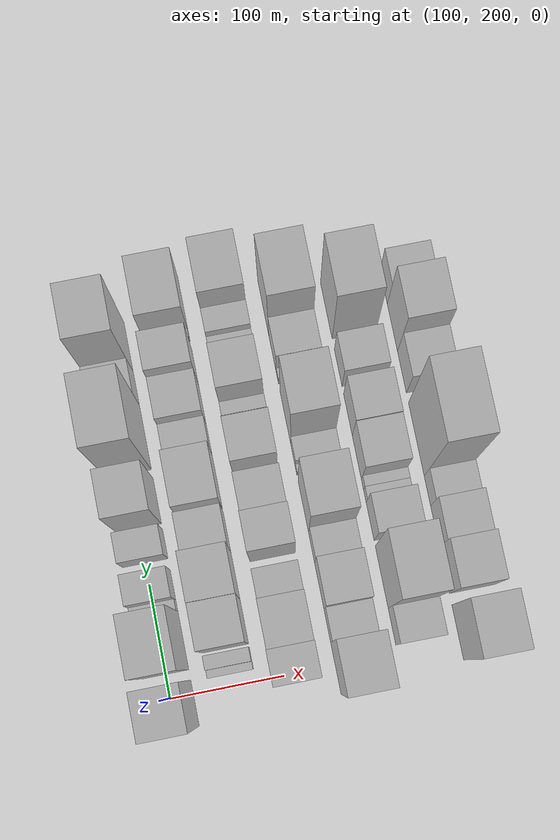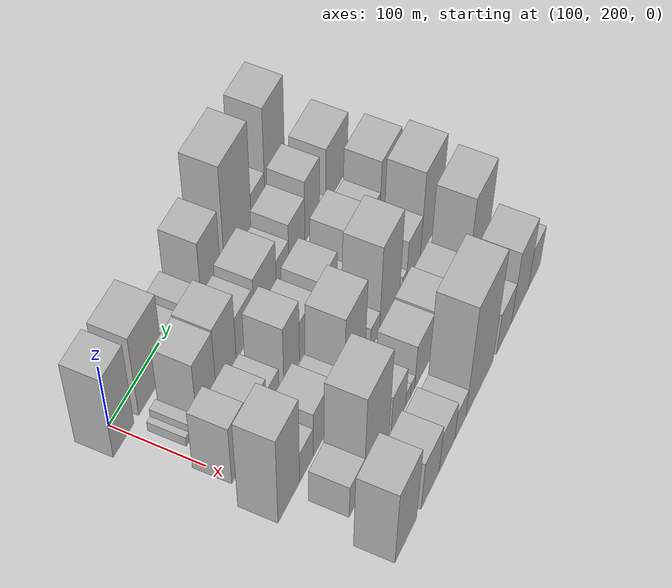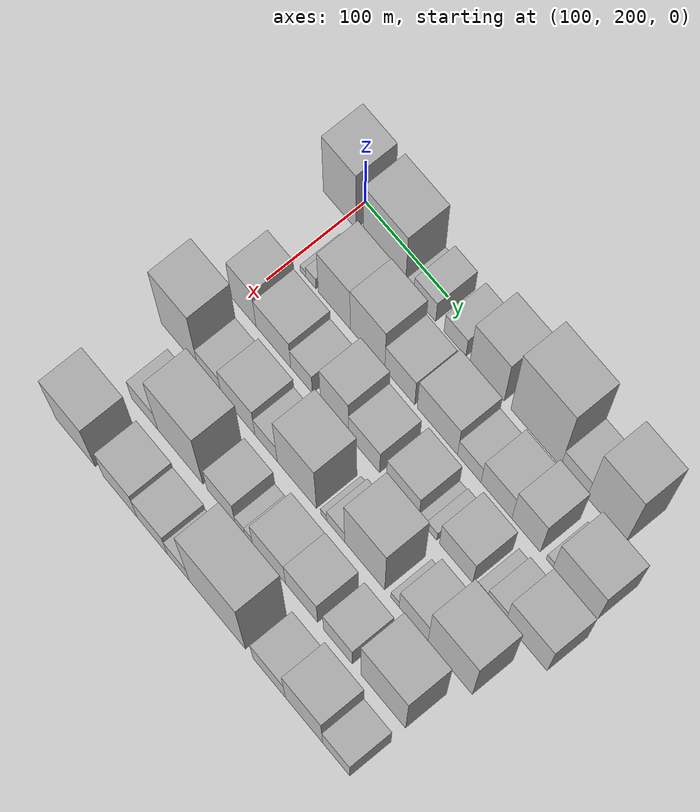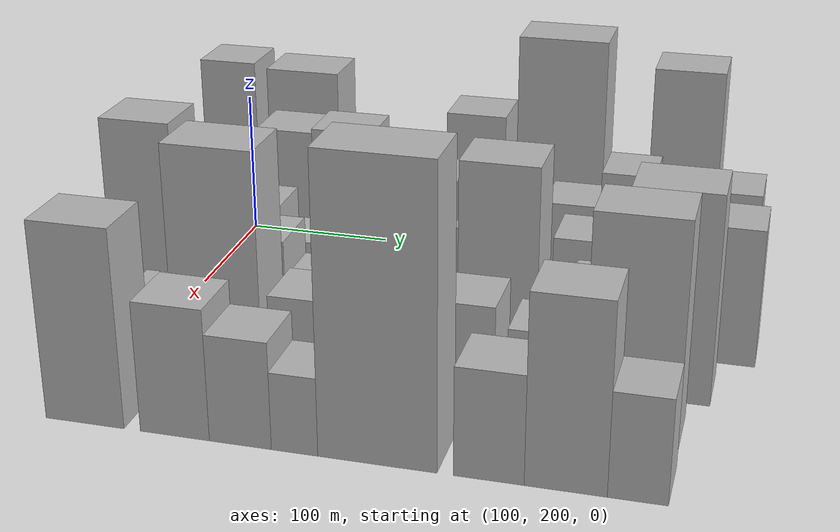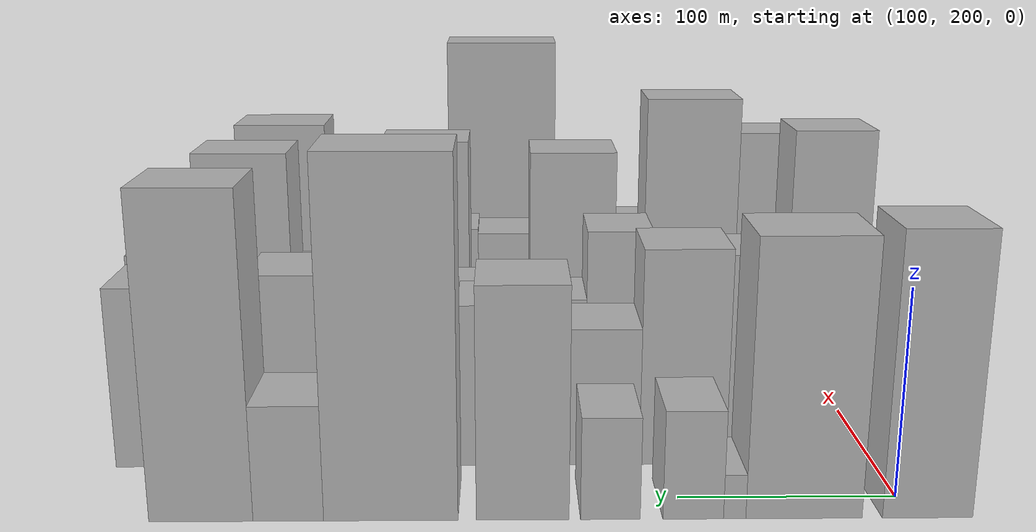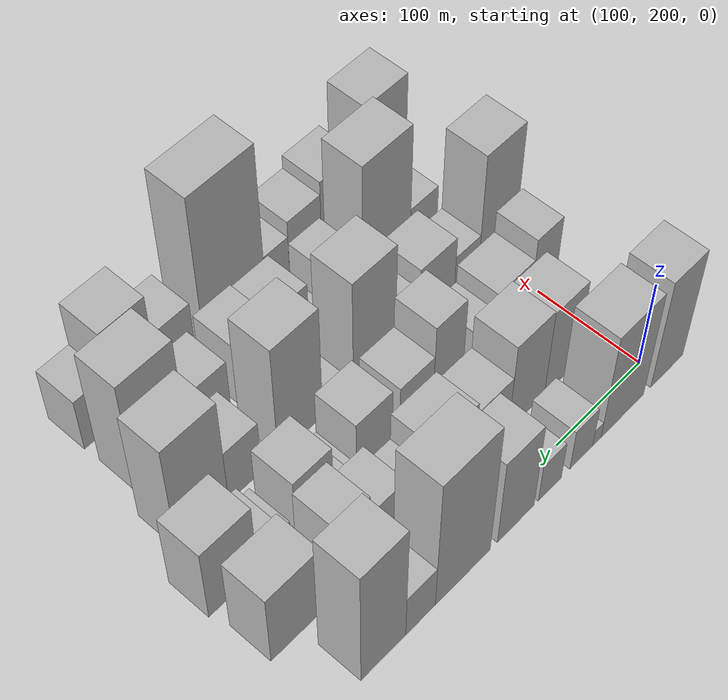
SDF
<sdf version="1.6">
 <world name="default">
  <model name="building_29">
   <static>1</static>
   <pose>100.0000 192.0008 0 0.000000 0.000000 0.000000</pose>
   <link name="link">
    <pose>0 0 66.00 0 0 0</pose>
    <collision name="collision"><geometry><box><size>40.0000 40.0782 132.0000</size></box></geometry></collision>
    <visual name="visual">
     <cast_shadows>0</cast_shadows>
     <geometry><box><size>40.0000 40.0782 132.0000</size></box></geometry>
     <material>
      <script>
       <uri>model://HANNAS_wall/materials/scripts</uri>
       <uri>model://HANNAS_wall/materials/textures</uri>
       <name>vrc/HANNAS_wall</name>
      </script>
     </material>
    </visual>
   </link>
  </model>
  <model name="building_30">
   <static>1</static>
   <pose>100.0000 246.7922 0 0.000000 0.000000 0.000000</pose>
   <link name="link">
    <pose>0 0 64.50 0 0 0</pose>
    <collision name="collision"><geometry><box><size>40.0000 51.5045 129.0000</size></box></geometry></collision>
    <visual name="visual">
     <cast_shadows>0</cast_shadows>
     <geometry><box><size>40.0000 51.5045 129.0000</size></box></geometry>
     <material>
      <script>
       <uri>model://HANNAS_wall/materials/scripts</uri>
       <uri>model://HANNAS_wall/materials/textures</uri>
       <name>vrc/HANNAS_wall</name>
      </script>
     </material>
    </visual>
   </link>
  </model>
  <model name="building_31">
   <static>1</static>
   <pose>100.0000 277.4822 0 0.000000 0.000000 0.000000</pose>
   <link name="link">
    <pose>0 0 10.50 0 0 0</pose>
    <collision name="collision"><geometry><box><size>40.0000 9.8754 21.0000</size></box></geometry></collision>
    <visual name="visual">
     <cast_shadows>0</cast_shadows>
     <geometry><box><size>40.0000 9.8754 21.0000</size></box></geometry>
     <material>
      <script>
       <uri>model://HANNAS_wall/materials/scripts</uri>
       <uri>model://HANNAS_wall/materials/textures</uri>
       <name>vrc/HANNAS_wall</name>
      </script>
     </material>
    </visual>
   </link>
  </model>
  <model name="building_32">
   <static>1</static>
   <pose>100.0000 295.7959 0 0.000000 0.000000 0.000000</pose>
   <link name="link">
    <pose>0 0 25.50 0 0 0</pose>
    <collision name="collision"><geometry><box><size>40.0000 26.7520 51.0000</size></box></geometry></collision>
    <visual name="visual">
     <cast_shadows>0</cast_shadows>
     <geometry><box><size>40.0000 26.7520 51.0000</size></box></geometry>
     <material>
      <script>
       <uri>model://HANNAS_wall/materials/scripts</uri>
       <uri>model://HANNAS_wall/materials/textures</uri>
       <name>vrc/HANNAS_wall</name>
      </script>
     </material>
    </visual>
   </link>
  </model>
  <model name="building_33">
   <static>1</static>
   <pose>100.0000 332.3460 0 0.000000 0.000000 0.000000</pose>
   <link name="link">
    <pose>0 0 24.00 0 0 0</pose>
    <collision name="collision"><geometry><box><size>40.0000 26.3484 48.0000</size></box></geometry></collision>
    <visual name="visual">
     <cast_shadows>0</cast_shadows>
     <geometry><box><size>40.0000 26.3484 48.0000</size></box></geometry>
     <material>
      <script>
       <uri>model://HANNAS_wall/materials/scripts</uri>
       <uri>model://HANNAS_wall/materials/textures</uri>
       <name>vrc/HANNAS_wall</name>
      </script>
     </material>
    </visual>
   </link>
  </model>
  <model name="building_34">
   <static>1</static>
   <pose>100.0000 370.9878 0 0.000000 0.000000 0.000000</pose>
   <link name="link">
    <pose>0 0 54.00 0 0 0</pose>
    <collision name="collision"><geometry><box><size>40.0000 40.9351 108.0000</size></box></geometry></collision>
    <visual name="visual">
     <cast_shadows>0</cast_shadows>
     <geometry><box><size>40.0000 40.9351 108.0000</size></box></geometry>
     <material>
      <script>
       <uri>model://HANNAS_wall/materials/scripts</uri>
       <uri>model://HANNAS_wall/materials/textures</uri>
       <name>vrc/HANNAS_wall</name>
      </script>
     </material>
    </visual>
   </link>
  </model>
  <model name="building_35">
   <static>1</static>
   <pose>100.0000 428.9990 0 0.000000 0.000000 0.000000</pose>
   <link name="link">
    <pose>0 0 82.50 0 0 0</pose>
    <collision name="collision"><geometry><box><size>40.0000 59.0874 165.0000</size></box></geometry></collision>
    <visual name="visual">
     <cast_shadows>0</cast_shadows>
     <geometry><box><size>40.0000 59.0874 165.0000</size></box></geometry>
     <material>
      <script>
       <uri>model://HANNAS_wall/materials/scripts</uri>
       <uri>model://HANNAS_wall/materials/textures</uri>
       <name>vrc/HANNAS_wall</name>
      </script>
     </material>
    </visual>
   </link>
  </model>
  <model name="building_36">
   <static>1</static>
   <pose>100.0000 474.0347 0 0.000000 0.000000 0.000000</pose>
   <link name="link">
    <pose>0 0 27.00 0 0 0</pose>
    <collision name="collision"><geometry><box><size>40.0000 30.9840 54.0000</size></box></geometry></collision>
    <visual name="visual">
     <cast_shadows>0</cast_shadows>
     <geometry><box><size>40.0000 30.9840 54.0000</size></box></geometry>
     <material>
      <script>
       <uri>model://HANNAS_wall/materials/scripts</uri>
       <uri>model://HANNAS_wall/materials/textures</uri>
       <name>vrc/HANNAS_wall</name>
      </script>
     </material>
    </visual>
   </link>
  </model>
  <model name="building_37">
   <static>1</static>
   <pose>100.0000 512.3588 0 0.000000 0.000000 0.000000</pose>
   <link name="link">
    <pose>0 0 75.00 0 0 0</pose>
    <collision name="collision"><geometry><box><size>40.0000 45.6642 150.0000</size></box></geometry></collision>
    <visual name="visual">
     <cast_shadows>0</cast_shadows>
     <geometry><box><size>40.0000 45.6642 150.0000</size></box></geometry>
     <material>
      <script>
       <uri>model://HANNAS_wall/materials/scripts</uri>
       <uri>model://HANNAS_wall/materials/textures</uri>
       <name>vrc/HANNAS_wall</name>
      </script>
     </material>
    </visual>
   </link>
  </model>
  <model name="building_79">
   <static>1</static>
   <pose>155.0000 213.9630 0 0.000000 0.000000 0.000000</pose>
   <link name="link">
    <pose>0 0 7.50 0 0 0</pose>
    <collision name="collision"><geometry><box><size>40.0000 6.9644 15.0000</size></box></geometry></collision>
    <visual name="visual">
     <cast_shadows>0</cast_shadows>
     <geometry><box><size>40.0000 6.9644 15.0000</size></box></geometry>
     <material>
      <script>
       <uri>model://HANNAS_wall/materials/scripts</uri>
       <uri>model://HANNAS_wall/materials/textures</uri>
       <name>vrc/HANNAS_wall</name>
      </script>
     </material>
    </visual>
   </link>
  </model>
  <model name="building_80">
   <static>1</static>
   <pose>155.0000 223.6297 0 0.000000 0.000000 0.000000</pose>
   <link name="link">
    <pose>0 0 13.50 0 0 0</pose>
    <collision name="collision"><geometry><box><size>40.0000 12.3691 27.0000</size></box></geometry></collision>
    <visual name="visual">
     <cast_shadows>0</cast_shadows>
     <geometry><box><size>40.0000 12.3691 27.0000</size></box></geometry>
     <material>
      <script>
       <uri>model://HANNAS_wall/materials/scripts</uri>
       <uri>model://HANNAS_wall/materials/textures</uri>
       <name>vrc/HANNAS_wall</name>
      </script>
     </material>
    </visual>
   </link>
  </model>
  <model name="building_81">
   <static>1</static>
   <pose>155.0000 252.2662 0 0.000000 0.000000 0.000000</pose>
   <link name="link">
    <pose>0 0 52.50 0 0 0</pose>
    <collision name="collision"><geometry><box><size>40.0000 38.9040 105.0000</size></box></geometry></collision>
    <visual name="visual">
     <cast_shadows>0</cast_shadows>
     <geometry><box><size>40.0000 38.9040 105.0000</size></box></geometry>
     <material>
      <script>
       <uri>model://HANNAS_wall/materials/scripts</uri>
       <uri>model://HANNAS_wall/materials/textures</uri>
       <name>vrc/HANNAS_wall</name>
      </script>
     </material>
    </visual>
   </link>
  </model>
  <model name="building_82">
   <static>1</static>
   <pose>155.0000 292.7242 0 0.000000 0.000000 0.000000</pose>
   <link name="link">
    <pose>0 0 54.00 0 0 0</pose>
    <collision name="collision"><geometry><box><size>40.0000 42.0119 108.0000</size></box></geometry></collision>
    <visual name="visual">
     <cast_shadows>0</cast_shadows>
     <geometry><box><size>40.0000 42.0119 108.0000</size></box></geometry>
     <material>
      <script>
       <uri>model://HANNAS_wall/materials/scripts</uri>
       <uri>model://HANNAS_wall/materials/textures</uri>
       <name>vrc/HANNAS_wall</name>
      </script>
     </material>
    </visual>
   </link>
  </model>
  <model name="building_83">
   <static>1</static>
   <pose>155.0000 331.7362 0 0.000000 0.000000 0.000000</pose>
   <link name="link">
    <pose>0 0 34.50 0 0 0</pose>
    <collision name="collision"><geometry><box><size>40.0000 36.0121 69.0000</size></box></geometry></collision>
    <visual name="visual">
     <cast_shadows>0</cast_shadows>
     <geometry><box><size>40.0000 36.0121 69.0000</size></box></geometry>
     <material>
      <script>
       <uri>model://HANNAS_wall/materials/scripts</uri>
       <uri>model://HANNAS_wall/materials/textures</uri>
       <name>vrc/HANNAS_wall</name>
      </script>
     </material>
    </visual>
   </link>
  </model>
  <model name="building_84">
   <static>1</static>
   <pose>155.0000 376.8849 0 0.000000 0.000000 0.000000</pose>
   <link name="link">
    <pose>0 0 40.50 0 0 0</pose>
    <collision name="collision"><geometry><box><size>40.0000 48.2853 81.0000</size></box></geometry></collision>
    <visual name="visual">
     <cast_shadows>0</cast_shadows>
     <geometry><box><size>40.0000 48.2853 81.0000</size></box></geometry>
     <material>
      <script>
       <uri>model://HANNAS_wall/materials/scripts</uri>
       <uri>model://HANNAS_wall/materials/textures</uri>
       <name>vrc/HANNAS_wall</name>
      </script>
     </material>
    </visual>
   </link>
  </model>
  <model name="building_85">
   <static>1</static>
   <pose>155.0000 415.0615 0 0.000000 0.000000 0.000000</pose>
   <link name="link">
    <pose>0 0 24.00 0 0 0</pose>
    <collision name="collision"><geometry><box><size>40.0000 28.0679 48.0000</size></box></geometry></collision>
    <visual name="visual">
     <cast_shadows>0</cast_shadows>
     <geometry><box><size>40.0000 28.0679 48.0000</size></box></geometry>
     <material>
      <script>
       <uri>model://HANNAS_wall/materials/scripts</uri>
       <uri>model://HANNAS_wall/materials/textures</uri>
       <name>vrc/HANNAS_wall</name>
      </script>
     </material>
    </visual>
   </link>
  </model>
  <model name="building_86">
   <static>1</static>
   <pose>155.0000 447.3086 0 0.000000 0.000000 0.000000</pose>
   <link name="link">
    <pose>0 0 36.00 0 0 0</pose>
    <collision name="collision"><geometry><box><size>40.0000 36.4263 72.0000</size></box></geometry></collision>
    <visual name="visual">
     <cast_shadows>0</cast_shadows>
     <geometry><box><size>40.0000 36.4263 72.0000</size></box></geometry>
     <material>
      <script>
       <uri>model://HANNAS_wall/materials/scripts</uri>
       <uri>model://HANNAS_wall/materials/textures</uri>
       <name>vrc/HANNAS_wall</name>
      </script>
     </material>
    </visual>
   </link>
  </model>
  <model name="building_87">
   <static>1</static>
   <pose>155.0000 482.3253 0 0.000000 0.000000 0.000000</pose>
   <link name="link">
    <pose>0 0 48.00 0 0 0</pose>
    <collision name="collision"><geometry><box><size>40.0000 33.6070 96.0000</size></box></geometry></collision>
    <visual name="visual">
     <cast_shadows>0</cast_shadows>
     <geometry><box><size>40.0000 33.6070 96.0000</size></box></geometry>
     <material>
      <script>
       <uri>model://HANNAS_wall/materials/scripts</uri>
       <uri>model://HANNAS_wall/materials/textures</uri>
       <name>vrc/HANNAS_wall</name>
      </script>
     </material>
    </visual>
   </link>
  </model>
  <model name="building_88">
   <static>1</static>
   <pose>155.0000 510.2449 0 0.000000 0.000000 0.000000</pose>
   <link name="link">
    <pose>0 0 9.00 0 0 0</pose>
    <collision name="collision"><geometry><box><size>40.0000 8.2322 18.0000</size></box></geometry></collision>
    <visual name="visual">
     <cast_shadows>0</cast_shadows>
     <geometry><box><size>40.0000 8.2322 18.0000</size></box></geometry>
     <material>
      <script>
       <uri>model://HANNAS_wall/materials/scripts</uri>
       <uri>model://HANNAS_wall/materials/textures</uri>
       <name>vrc/HANNAS_wall</name>
      </script>
     </material>
    </visual>
   </link>
  </model>
  <model name="building_89">
   <static>1</static>
   <pose>155.0000 540.3311 0 0.000000 0.000000 0.000000</pose>
   <link name="link">
    <pose>0 0 45.00 0 0 0</pose>
    <collision name="collision"><geometry><box><size>40.0000 51.9402 90.0000</size></box></geometry></collision>
    <visual name="visual">
     <cast_shadows>0</cast_shadows>
     <geometry><box><size>40.0000 51.9402 90.0000</size></box></geometry>
     <material>
      <script>
       <uri>model://HANNAS_wall/materials/scripts</uri>
       <uri>model://HANNAS_wall/materials/textures</uri>
       <name>vrc/HANNAS_wall</name>
      </script>
     </material>
    </visual>
   </link>
  </model>
  <model name="building_132">
   <static>1</static>
   <pose>210.0000 208.3521 0 0.000000 0.000000 0.000000</pose>
   <link name="link">
    <pose>0 0 48.00 0 0 0</pose>
    <collision name="collision"><geometry><box><size>40.0000 30.3574 96.0000</size></box></geometry></collision>
    <visual name="visual">
     <cast_shadows>0</cast_shadows>
     <geometry><box><size>40.0000 30.3574 96.0000</size></box></geometry>
     <material>
      <script>
       <uri>model://HANNAS_wall/materials/scripts</uri>
       <uri>model://HANNAS_wall/materials/textures</uri>
       <name>vrc/HANNAS_wall</name>
      </script>
     </material>
    </visual>
   </link>
  </model>
  <model name="building_133">
   <static>1</static>
   <pose>210.0000 244.8781 0 0.000000 0.000000 0.000000</pose>
   <link name="link">
    <pose>0 0 36.00 0 0 0</pose>
    <collision name="collision"><geometry><box><size>40.0000 42.6946 72.0000</size></box></geometry></collision>
    <visual name="visual">
     <cast_shadows>0</cast_shadows>
     <geometry><box><size>40.0000 42.6946 72.0000</size></box></geometry>
     <material>
      <script>
       <uri>model://HANNAS_wall/materials/scripts</uri>
       <uri>model://HANNAS_wall/materials/textures</uri>
       <name>vrc/HANNAS_wall</name>
      </script>
     </material>
    </visual>
   </link>
  </model>
  <model name="building_134">
   <static>1</static>
   <pose>210.0000 279.3875 0 0.000000 0.000000 0.000000</pose>
   <link name="link">
    <pose>0 0 25.50 0 0 0</pose>
    <collision name="collision"><geometry><box><size>40.0000 26.3243 51.0000</size></box></geometry></collision>
    <visual name="visual">
     <cast_shadows>0</cast_shadows>
     <geometry><box><size>40.0000 26.3243 51.0000</size></box></geometry>
     <material>
      <script>
       <uri>model://HANNAS_wall/materials/scripts</uri>
       <uri>model://HANNAS_wall/materials/textures</uri>
       <name>vrc/HANNAS_wall</name>
      </script>
     </material>
    </visual>
   </link>
  </model>
  <model name="building_135">
   <static>1</static>
   <pose>210.0000 319.4774 0 0.000000 0.000000 0.000000</pose>
   <link name="link">
    <pose>0 0 51.00 0 0 0</pose>
    <collision name="collision"><geometry><box><size>40.0000 33.8553 102.0000</size></box></geometry></collision>
    <visual name="visual">
     <cast_shadows>0</cast_shadows>
     <geometry><box><size>40.0000 33.8553 102.0000</size></box></geometry>
     <material>
      <script>
       <uri>model://HANNAS_wall/materials/scripts</uri>
       <uri>model://HANNAS_wall/materials/textures</uri>
       <name>vrc/HANNAS_wall</name>
      </script>
     </material>
    </visual>
   </link>
  </model>
  <model name="building_136">
   <static>1</static>
   <pose>210.0000 355.1259 0 0.000000 0.000000 0.000000</pose>
   <link name="link">
    <pose>0 0 33.00 0 0 0</pose>
    <collision name="collision"><geometry><box><size>40.0000 37.4417 66.0000</size></box></geometry></collision>
    <visual name="visual">
     <cast_shadows>0</cast_shadows>
     <geometry><box><size>40.0000 37.4417 66.0000</size></box></geometry>
     <material>
      <script>
       <uri>model://HANNAS_wall/materials/scripts</uri>
       <uri>model://HANNAS_wall/materials/textures</uri>
       <name>vrc/HANNAS_wall</name>
      </script>
     </material>
    </visual>
   </link>
  </model>
  <model name="building_137">
   <static>1</static>
   <pose>210.0000 401.2514 0 0.000000 0.000000 0.000000</pose>
   <link name="link">
    <pose>0 0 36.00 0 0 0</pose>
    <collision name="collision"><geometry><box><size>40.0000 38.8093 72.0000</size></box></geometry></collision>
    <visual name="visual">
     <cast_shadows>0</cast_shadows>
     <geometry><box><size>40.0000 38.8093 72.0000</size></box></geometry>
     <material>
      <script>
       <uri>model://HANNAS_wall/materials/scripts</uri>
       <uri>model://HANNAS_wall/materials/textures</uri>
       <name>vrc/HANNAS_wall</name>
      </script>
     </material>
    </visual>
   </link>
  </model>
  <model name="building_138">
   <static>1</static>
   <pose>210.0000 425.2472 0 0.000000 0.000000 0.000000</pose>
   <link name="link">
    <pose>0 0 10.50 0 0 0</pose>
    <collision name="collision"><geometry><box><size>40.0000 9.1824 21.0000</size></box></geometry></collision>
    <visual name="visual">
     <cast_shadows>0</cast_shadows>
     <geometry><box><size>40.0000 9.1824 21.0000</size></box></geometry>
     <material>
      <script>
       <uri>model://HANNAS_wall/materials/scripts</uri>
       <uri>model://HANNAS_wall/materials/textures</uri>
       <name>vrc/HANNAS_wall</name>
      </script>
     </material>
    </visual>
   </link>
  </model>
  <model name="building_139">
   <static>1</static>
   <pose>210.0000 435.9958 0 0.000000 0.000000 0.000000</pose>
   <link name="link">
    <pose>0 0 13.50 0 0 0</pose>
    <collision name="collision"><geometry><box><size>40.0000 12.3148 27.0000</size></box></geometry></collision>
    <visual name="visual">
     <cast_shadows>0</cast_shadows>
     <geometry><box><size>40.0000 12.3148 27.0000</size></box></geometry>
     <material>
      <script>
       <uri>model://HANNAS_wall/materials/scripts</uri>
       <uri>model://HANNAS_wall/materials/textures</uri>
       <name>vrc/HANNAS_wall</name>
      </script>
     </material>
    </visual>
   </link>
  </model>
  <model name="building_140">
   <static>1</static>
   <pose>210.0000 464.8243 0 0.000000 0.000000 0.000000</pose>
   <link name="link">
    <pose>0 0 36.00 0 0 0</pose>
    <collision name="collision"><geometry><box><size>40.0000 39.3422 72.0000</size></box></geometry></collision>
    <visual name="visual">
     <cast_shadows>0</cast_shadows>
     <geometry><box><size>40.0000 39.3422 72.0000</size></box></geometry>
     <material>
      <script>
       <uri>model://HANNAS_wall/materials/scripts</uri>
       <uri>model://HANNAS_wall/materials/textures</uri>
       <name>vrc/HANNAS_wall</name>
      </script>
     </material>
    </visual>
   </link>
  </model>
  <model name="building_141">
   <static>1</static>
   <pose>210.0000 495.4326 0 0.000000 0.000000 0.000000</pose>
   <link name="link">
    <pose>0 0 13.50 0 0 0</pose>
    <collision name="collision"><geometry><box><size>40.0000 11.8744 27.0000</size></box></geometry></collision>
    <visual name="visual">
     <cast_shadows>0</cast_shadows>
     <geometry><box><size>40.0000 11.8744 27.0000</size></box></geometry>
     <material>
      <script>
       <uri>model://HANNAS_wall/materials/scripts</uri>
       <uri>model://HANNAS_wall/materials/textures</uri>
       <name>vrc/HANNAS_wall</name>
      </script>
     </material>
    </visual>
   </link>
  </model>
  <model name="building_142">
   <static>1</static>
   <pose>210.0000 512.3777 0 0.000000 0.000000 0.000000</pose>
   <link name="link">
    <pose>0 0 21.00 0 0 0</pose>
    <collision name="collision"><geometry><box><size>40.0000 22.0159 42.0000</size></box></geometry></collision>
    <visual name="visual">
     <cast_shadows>0</cast_shadows>
     <geometry><box><size>40.0000 22.0159 42.0000</size></box></geometry>
     <material>
      <script>
       <uri>model://HANNAS_wall/materials/scripts</uri>
       <uri>model://HANNAS_wall/materials/textures</uri>
       <name>vrc/HANNAS_wall</name>
      </script>
     </material>
    </visual>
   </link>
  </model>
  <model name="building_143">
   <static>1</static>
   <pose>210.0000 547.6105 0 0.000000 0.000000 0.000000</pose>
   <link name="link">
    <pose>0 0 45.00 0 0 0</pose>
    <collision name="collision"><geometry><box><size>40.0000 48.4497 90.0000</size></box></geometry></collision>
    <visual name="visual">
     <cast_shadows>0</cast_shadows>
     <geometry><box><size>40.0000 48.4497 90.0000</size></box></geometry>
     <material>
      <script>
       <uri>model://HANNAS_wall/materials/scripts</uri>
       <uri>model://HANNAS_wall/materials/textures</uri>
       <name>vrc/HANNAS_wall</name>
      </script>
     </material>
    </visual>
   </link>
  </model>
  <model name="building_184">
   <static>1</static>
   <pose>265.0000 197.4541 0 0.000000 0.000000 0.000000</pose>
   <link name="link">
    <pose>0 0 72.00 0 0 0</pose>
    <collision name="collision"><geometry><box><size>40.0000 45.0843 144.0000</size></box></geometry></collision>
    <visual name="visual">
     <cast_shadows>0</cast_shadows>
     <geometry><box><size>40.0000 45.0843 144.0000</size></box></geometry>
     <material>
      <script>
       <uri>model://HANNAS_wall/materials/scripts</uri>
       <uri>model://HANNAS_wall/materials/textures</uri>
       <name>vrc/HANNAS_wall</name>
      </script>
     </material>
    </visual>
   </link>
  </model>
  <model name="building_185">
   <static>1</static>
   <pose>265.0000 234.4595 0 0.000000 0.000000 0.000000</pose>
   <link name="link">
    <pose>0 0 25.50 0 0 0</pose>
    <collision name="collision"><geometry><box><size>40.0000 28.9264 51.0000</size></box></geometry></collision>
    <visual name="visual">
     <cast_shadows>0</cast_shadows>
     <geometry><box><size>40.0000 28.9264 51.0000</size></box></geometry>
     <material>
      <script>
       <uri>model://HANNAS_wall/materials/scripts</uri>
       <uri>model://HANNAS_wall/materials/textures</uri>
       <name>vrc/HANNAS_wall</name>
      </script>
     </material>
    </visual>
   </link>
  </model>
  <model name="building_186">
   <static>1</static>
   <pose>265.0000 269.4739 0 0.000000 0.000000 0.000000</pose>
   <link name="link">
    <pose>0 0 37.50 0 0 0</pose>
    <collision name="collision"><geometry><box><size>40.0000 41.1023 75.0000</size></box></geometry></collision>
    <visual name="visual">
     <cast_shadows>0</cast_shadows>
     <geometry><box><size>40.0000 41.1023 75.0000</size></box></geometry>
     <material>
      <script>
       <uri>model://HANNAS_wall/materials/scripts</uri>
       <uri>model://HANNAS_wall/materials/textures</uri>
       <name>vrc/HANNAS_wall</name>
      </script>
     </material>
    </visual>
   </link>
  </model>
  <model name="building_187">
   <static>1</static>
   <pose>265.0000 303.6127 0 0.000000 0.000000 0.000000</pose>
   <link name="link">
    <pose>0 0 25.50 0 0 0</pose>
    <collision name="collision"><geometry><box><size>40.0000 27.1752 51.0000</size></box></geometry></collision>
    <visual name="visual">
     <cast_shadows>0</cast_shadows>
     <geometry><box><size>40.0000 27.1752 51.0000</size></box></geometry>
     <material>
      <script>
       <uri>model://HANNAS_wall/materials/scripts</uri>
       <uri>model://HANNAS_wall/materials/textures</uri>
       <name>vrc/HANNAS_wall</name>
      </script>
     </material>
    </visual>
   </link>
  </model>
  <model name="building_188">
   <static>1</static>
   <pose>265.0000 340.8918 0 0.000000 0.000000 0.000000</pose>
   <link name="link">
    <pose>0 0 66.00 0 0 0</pose>
    <collision name="collision"><geometry><box><size>40.0000 47.3831 132.0000</size></box></geometry></collision>
    <visual name="visual">
     <cast_shadows>0</cast_shadows>
     <geometry><box><size>40.0000 47.3831 132.0000</size></box></geometry>
     <material>
      <script>
       <uri>model://HANNAS_wall/materials/scripts</uri>
       <uri>model://HANNAS_wall/materials/textures</uri>
       <name>vrc/HANNAS_wall</name>
      </script>
     </material>
    </visual>
   </link>
  </model>
  <model name="building_189">
   <static>1</static>
   <pose>265.0000 373.2711 0 0.000000 0.000000 0.000000</pose>
   <link name="link">
    <pose>0 0 9.00 0 0 0</pose>
    <collision name="collision"><geometry><box><size>40.0000 7.3756 18.0000</size></box></geometry></collision>
    <visual name="visual">
     <cast_shadows>0</cast_shadows>
     <geometry><box><size>40.0000 7.3756 18.0000</size></box></geometry>
     <material>
      <script>
       <uri>model://HANNAS_wall/materials/scripts</uri>
       <uri>model://HANNAS_wall/materials/textures</uri>
       <name>vrc/HANNAS_wall</name>
      </script>
     </material>
    </visual>
   </link>
  </model>
  <model name="building_190">
   <static>1</static>
   <pose>265.0000 387.6790 0 0.000000 0.000000 0.000000</pose>
   <link name="link">
    <pose>0 0 18.00 0 0 0</pose>
    <collision name="collision"><geometry><box><size>40.0000 21.4402 36.0000</size></box></geometry></collision>
    <visual name="visual">
     <cast_shadows>0</cast_shadows>
     <geometry><box><size>40.0000 21.4402 36.0000</size></box></geometry>
     <material>
      <script>
       <uri>model://HANNAS_wall/materials/scripts</uri>
       <uri>model://HANNAS_wall/materials/textures</uri>
       <name>vrc/HANNAS_wall</name>
      </script>
     </material>
    </visual>
   </link>
  </model>
  <model name="building_191">
   <static>1</static>
   <pose>265.0000 422.3415 0 0.000000 0.000000 0.000000</pose>
   <link name="link">
    <pose>0 0 69.00 0 0 0</pose>
    <collision name="collision"><geometry><box><size>40.0000 47.8848 138.0000</size></box></geometry></collision>
    <visual name="visual">
     <cast_shadows>0</cast_shadows>
     <geometry><box><size>40.0000 47.8848 138.0000</size></box></geometry>
     <material>
      <script>
       <uri>model://HANNAS_wall/materials/scripts</uri>
       <uri>model://HANNAS_wall/materials/textures</uri>
       <name>vrc/HANNAS_wall</name>
      </script>
     </material>
    </visual>
   </link>
  </model>
  <model name="building_192">
   <static>1</static>
   <pose>265.0000 458.2795 0 0.000000 0.000000 0.000000</pose>
   <link name="link">
    <pose>0 0 10.50 0 0 0</pose>
    <collision name="collision"><geometry><box><size>40.0000 9.9912 21.0000</size></box></geometry></collision>
    <visual name="visual">
     <cast_shadows>0</cast_shadows>
     <geometry><box><size>40.0000 9.9912 21.0000</size></box></geometry>
     <material>
      <script>
       <uri>model://HANNAS_wall/materials/scripts</uri>
       <uri>model://HANNAS_wall/materials/textures</uri>
       <name>vrc/HANNAS_wall</name>
      </script>
     </material>
    </visual>
   </link>
  </model>
  <model name="building_193">
   <static>1</static>
   <pose>265.0000 480.3680 0 0.000000 0.000000 0.000000</pose>
   <link name="link">
    <pose>0 0 33.00 0 0 0</pose>
    <collision name="collision"><geometry><box><size>40.0000 34.1857 66.0000</size></box></geometry></collision>
    <visual name="visual">
     <cast_shadows>0</cast_shadows>
     <geometry><box><size>40.0000 34.1857 66.0000</size></box></geometry>
     <material>
      <script>
       <uri>model://HANNAS_wall/materials/scripts</uri>
       <uri>model://HANNAS_wall/materials/textures</uri>
       <name>vrc/HANNAS_wall</name>
      </script>
     </material>
    </visual>
   </link>
  </model>
  <model name="building_194">
   <static>1</static>
   <pose>265.0000 523.5234 0 0.000000 0.000000 0.000000</pose>
   <link name="link">
    <pose>0 0 66.00 0 0 0</pose>
    <collision name="collision"><geometry><box><size>40.0000 52.1252 132.0000</size></box></geometry></collision>
    <visual name="visual">
     <cast_shadows>0</cast_shadows>
     <geometry><box><size>40.0000 52.1252 132.0000</size></box></geometry>
     <material>
      <script>
       <uri>model://HANNAS_wall/materials/scripts</uri>
       <uri>model://HANNAS_wall/materials/textures</uri>
       <name>vrc/HANNAS_wall</name>
      </script>
     </material>
    </visual>
   </link>
  </model>
  <model name="building_240">
   <static>1</static>
   <pose>320.0000 223.1022 0 0.000000 0.000000 0.000000</pose>
   <link name="link">
    <pose>0 0 27.00 0 0 0</pose>
    <collision name="collision"><geometry><box><size>40.0000 32.3936 54.0000</size></box></geometry></collision>
    <visual name="visual">
     <cast_shadows>0</cast_shadows>
     <geometry><box><size>40.0000 32.3936 54.0000</size></box></geometry>
     <material>
      <script>
       <uri>model://HANNAS_wall/materials/scripts</uri>
       <uri>model://HANNAS_wall/materials/textures</uri>
       <name>vrc/HANNAS_wall</name>
      </script>
     </material>
    </visual>
   </link>
  </model>
  <model name="building_241">
   <static>1</static>
   <pose>320.0000 266.9655 0 0.000000 0.000000 0.000000</pose>
   <link name="link">
    <pose>0 0 76.50 0 0 0</pose>
    <collision name="collision"><geometry><box><size>40.0000 55.3329 153.0000</size></box></geometry></collision>
    <visual name="visual">
     <cast_shadows>0</cast_shadows>
     <geometry><box><size>40.0000 55.3329 153.0000</size></box></geometry>
     <material>
      <script>
       <uri>model://HANNAS_wall/materials/scripts</uri>
       <uri>model://HANNAS_wall/materials/textures</uri>
       <name>vrc/HANNAS_wall</name>
      </script>
     </material>
    </visual>
   </link>
  </model>
  <model name="building_242">
   <static>1</static>
   <pose>320.0000 316.6805 0 0.000000 0.000000 0.000000</pose>
   <link name="link">
    <pose>0 0 33.00 0 0 0</pose>
    <collision name="collision"><geometry><box><size>40.0000 34.0970 66.0000</size></box></geometry></collision>
    <visual name="visual">
     <cast_shadows>0</cast_shadows>
     <geometry><box><size>40.0000 34.0970 66.0000</size></box></geometry>
     <material>
      <script>
       <uri>model://HANNAS_wall/materials/scripts</uri>
       <uri>model://HANNAS_wall/materials/textures</uri>
       <name>vrc/HANNAS_wall</name>
      </script>
     </material>
    </visual>
   </link>
  </model>
  <model name="building_243">
   <static>1</static>
   <pose>320.0000 339.4523 0 0.000000 0.000000 0.000000</pose>
   <link name="link">
    <pose>0 0 12.00 0 0 0</pose>
    <collision name="collision"><geometry><box><size>40.0000 11.4466 24.0000</size></box></geometry></collision>
    <visual name="visual">
     <cast_shadows>0</cast_shadows>
     <geometry><box><size>40.0000 11.4466 24.0000</size></box></geometry>
     <material>
      <script>
       <uri>model://HANNAS_wall/materials/scripts</uri>
       <uri>model://HANNAS_wall/materials/textures</uri>
       <name>vrc/HANNAS_wall</name>
      </script>
     </material>
    </visual>
   </link>
  </model>
  <model name="building_244">
   <static>1</static>
   <pose>320.0000 350.0238 0 0.000000 0.000000 0.000000</pose>
   <link name="link">
    <pose>0 0 12.00 0 0 0</pose>
    <collision name="collision"><geometry><box><size>40.0000 9.6964 24.0000</size></box></geometry></collision>
    <visual name="visual">
     <cast_shadows>0</cast_shadows>
     <geometry><box><size>40.0000 9.6964 24.0000</size></box></geometry>
     <material>
      <script>
       <uri>model://HANNAS_wall/materials/scripts</uri>
       <uri>model://HANNAS_wall/materials/textures</uri>
       <name>vrc/HANNAS_wall</name>
      </script>
     </material>
    </visual>
   </link>
  </model>
  <model name="building_245">
   <static>1</static>
   <pose>320.0000 374.7567 0 0.000000 0.000000 0.000000</pose>
   <link name="link">
    <pose>0 0 36.00 0 0 0</pose>
    <collision name="collision"><geometry><box><size>40.0000 39.7694 72.0000</size></box></geometry></collision>
    <visual name="visual">
     <cast_shadows>0</cast_shadows>
     <geometry><box><size>40.0000 39.7694 72.0000</size></box></geometry>
     <material>
      <script>
       <uri>model://HANNAS_wall/materials/scripts</uri>
       <uri>model://HANNAS_wall/materials/textures</uri>
       <name>vrc/HANNAS_wall</name>
      </script>
     </material>
    </visual>
   </link>
  </model>
  <model name="building_246">
   <static>1</static>
   <pose>320.0000 413.8867 0 0.000000 0.000000 0.000000</pose>
   <link name="link">
    <pose>0 0 37.50 0 0 0</pose>
    <collision name="collision"><geometry><box><size>40.0000 38.4907 75.0000</size></box></geometry></collision>
    <visual name="visual">
     <cast_shadows>0</cast_shadows>
     <geometry><box><size>40.0000 38.4907 75.0000</size></box></geometry>
     <material>
      <script>
       <uri>model://HANNAS_wall/materials/scripts</uri>
       <uri>model://HANNAS_wall/materials/textures</uri>
       <name>vrc/HANNAS_wall</name>
      </script>
     </material>
    </visual>
   </link>
  </model>
  <model name="building_247">
   <static>1</static>
   <pose>320.0000 457.2198 0 0.000000 0.000000 0.000000</pose>
   <link name="link">
    <pose>0 0 31.50 0 0 0</pose>
    <collision name="collision"><geometry><box><size>40.0000 34.1755 63.0000</size></box></geometry></collision>
    <visual name="visual">
     <cast_shadows>0</cast_shadows>
     <geometry><box><size>40.0000 34.1755 63.0000</size></box></geometry>
     <material>
      <script>
       <uri>model://HANNAS_wall/materials/scripts</uri>
       <uri>model://HANNAS_wall/materials/textures</uri>
       <name>vrc/HANNAS_wall</name>
      </script>
     </material>
    </visual>
   </link>
  </model>
  <model name="building_248">
   <static>1</static>
   <pose>320.0000 510.6835 0 0.000000 0.000000 0.000000</pose>
   <link name="link">
    <pose>0 0 69.00 0 0 0</pose>
    <collision name="collision"><geometry><box><size>40.0000 52.7520 138.0000</size></box></geometry></collision>
    <visual name="visual">
     <cast_shadows>0</cast_shadows>
     <geometry><box><size>40.0000 52.7520 138.0000</size></box></geometry>
     <material>
      <script>
       <uri>model://HANNAS_wall/materials/scripts</uri>
       <uri>model://HANNAS_wall/materials/textures</uri>
       <name>vrc/HANNAS_wall</name>
      </script>
     </material>
    </visual>
   </link>
  </model>
  <model name="building_284">
   <static>1</static>
   <pose>375.0000 207.1847 0 0.000000 0.000000 0.000000</pose>
   <link name="link">
    <pose>0 0 61.50 0 0 0</pose>
    <collision name="collision"><geometry><box><size>40.0000 48.4363 123.0000</size></box></geometry></collision>
    <visual name="visual">
     <cast_shadows>0</cast_shadows>
     <geometry><box><size>40.0000 48.4363 123.0000</size></box></geometry>
     <material>
      <script>
       <uri>model://HANNAS_wall/materials/scripts</uri>
       <uri>model://HANNAS_wall/materials/textures</uri>
       <name>vrc/HANNAS_wall</name>
      </script>
     </material>
    </visual>
   </link>
  </model>
  <model name="building_285">
   <static>1</static>
   <pose>375.0000 262.2523 0 0.000000 0.000000 0.000000</pose>
   <link name="link">
    <pose>0 0 40.50 0 0 0</pose>
    <collision name="collision"><geometry><box><size>40.0000 41.6991 81.0000</size></box></geometry></collision>
    <visual name="visual">
     <cast_shadows>0</cast_shadows>
     <geometry><box><size>40.0000 41.6991 81.0000</size></box></geometry>
     <material>
      <script>
       <uri>model://HANNAS_wall/materials/scripts</uri>
       <uri>model://HANNAS_wall/materials/textures</uri>
       <name>vrc/HANNAS_wall</name>
      </script>
     </material>
    </visual>
   </link>
  </model>
  <model name="building_286">
   <static>1</static>
   <pose>375.0000 301.4252 0 0.000000 0.000000 0.000000</pose>
   <link name="link">
    <pose>0 0 33.00 0 0 0</pose>
    <collision name="collision"><geometry><box><size>40.0000 36.6467 66.0000</size></box></geometry></collision>
    <visual name="visual">
     <cast_shadows>0</cast_shadows>
     <geometry><box><size>40.0000 36.6467 66.0000</size></box></geometry>
     <material>
      <script>
       <uri>model://HANNAS_wall/materials/scripts</uri>
       <uri>model://HANNAS_wall/materials/textures</uri>
       <name>vrc/HANNAS_wall</name>
      </script>
     </material>
    </visual>
   </link>
  </model>
  <model name="building_287">
   <static>1</static>
   <pose>375.0000 333.2435 0 0.000000 0.000000 0.000000</pose>
   <link name="link">
    <pose>0 0 24.00 0 0 0</pose>
    <collision name="collision"><geometry><box><size>40.0000 26.9900 48.0000</size></box></geometry></collision>
    <visual name="visual">
     <cast_shadows>0</cast_shadows>
     <geometry><box><size>40.0000 26.9900 48.0000</size></box></geometry>
     <material>
      <script>
       <uri>model://HANNAS_wall/materials/scripts</uri>
       <uri>model://HANNAS_wall/materials/textures</uri>
       <name>vrc/HANNAS_wall</name>
      </script>
     </material>
    </visual>
   </link>
  </model>
  <model name="building_288">
   <static>1</static>
   <pose>375.0000 380.4676 0 0.000000 0.000000 0.000000</pose>
   <link name="link">
    <pose>0 0 90.00 0 0 0</pose>
    <collision name="collision"><geometry><box><size>40.0000 67.4582 180.0000</size></box></geometry></collision>
    <visual name="visual">
     <cast_shadows>0</cast_shadows>
     <geometry><box><size>40.0000 67.4582 180.0000</size></box></geometry>
     <material>
      <script>
       <uri>model://HANNAS_wall/materials/scripts</uri>
       <uri>model://HANNAS_wall/materials/textures</uri>
       <name>vrc/HANNAS_wall</name>
      </script>
     </material>
    </visual>
   </link>
  </model>
  <model name="building_289">
   <static>1</static>
   <pose>375.0000 442.5197 0 0.000000 0.000000 0.000000</pose>
   <link name="link">
    <pose>0 0 33.00 0 0 0</pose>
    <collision name="collision"><geometry><box><size>40.0000 38.6461 66.0000</size></box></geometry></collision>
    <visual name="visual">
     <cast_shadows>0</cast_shadows>
     <geometry><box><size>40.0000 38.6461 66.0000</size></box></geometry>
     <material>
      <script>
       <uri>model://HANNAS_wall/materials/scripts</uri>
       <uri>model://HANNAS_wall/materials/textures</uri>
       <name>vrc/HANNAS_wall</name>
      </script>
     </material>
    </visual>
   </link>
  </model>
  <model name="building_290">
   <static>1</static>
   <pose>375.0000 484.0161 0 0.000000 0.000000 0.000000</pose>
   <link name="link">
    <pose>0 0 57.00 0 0 0</pose>
    <collision name="collision"><geometry><box><size>40.0000 44.3467 114.0000</size></box></geometry></collision>
    <visual name="visual">
     <cast_shadows>0</cast_shadows>
     <geometry><box><size>40.0000 44.3467 114.0000</size></box></geometry>
     <material>
      <script>
       <uri>model://HANNAS_wall/materials/scripts</uri>
       <uri>model://HANNAS_wall/materials/textures</uri>
       <name>vrc/HANNAS_wall</name>
      </script>
     </material>
    </visual>
   </link>
  </model>
  <model name="building_291">
   <static>1</static>
   <pose>375.0000 522.1667 0 0.000000 0.000000 0.000000</pose>
   <link name="link">
    <pose>0 0 31.50 0 0 0</pose>
    <collision name="collision"><geometry><box><size>40.0000 31.9545 63.0000</size></box></geometry></collision>
    <visual name="visual">
     <cast_shadows>0</cast_shadows>
     <geometry><box><size>40.0000 31.9545 63.0000</size></box></geometry>
     <material>
      <script>
       <uri>model://HANNAS_wall/materials/scripts</uri>
       <uri>model://HANNAS_wall/materials/textures</uri>
       <name>vrc/HANNAS_wall</name>
      </script>
     </material>
    </visual>
   </link>
  </model>
 </world>
</sdf>
